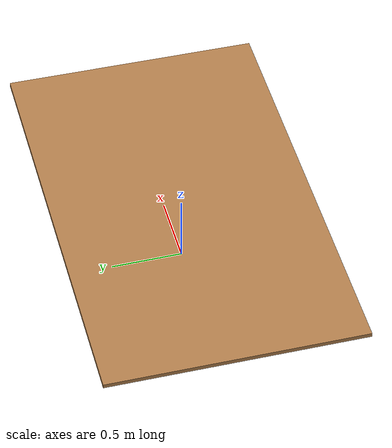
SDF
<?xml version="1.0" ?>
<sdf version="1.4">
  <model name="table_SUTURO">
    <static>true</static>
    <link name="link">
      <collision name="surface">
        <pose>0 0 0.5 0 0 0</pose>
        <geometry>
          <box>
            <size>3 1 0.03</size>
          </box>
        </geometry>
      </collision>
      <visual name="visual1">
        <pose>0 0 0.5 0 0 0</pose>
        <geometry>
          <box>
            <size>3 1.8 0.03</size>
          </box>
        </geometry>
        <material>
          <script>
            <uri>file://media/materials/scripts/gazebo.material</uri>
            <name>Gazebo/Wood</name>
          </script>
        </material>
      </visual>
      <collision name="front_left_leg">
        <pose>0.68 0.38 0 0 0 0</pose>
        <geometry>
          <cylinder>
            <radius>0.02</radius>
            <length>0.5</length>
          </cylinder>
        </geometry>
      </collision>
      <visual name="front_left_leg">
        <pose>0.68 0.38 0 0 0 0</pose>
        <geometry>
          <cylinder>
            <radius>0.02</radius>
            <length>0.5</length>
          </cylinder>
        </geometry>
        <material>
          <script>
            <uri>file://media/materials/scripts/gazebo.material</uri>
            <name>Gazebo/Grey</name>
          </script>
        </material>
      </visual>
      <collision name="front_right_leg">
        <pose>0.68 -0.38 0 0 0 0</pose>
        <geometry>
          <cylinder>
            <radius>0.02</radius>
            <length>0.5</length>
          </cylinder>
        </geometry>
      </collision>
      <visual name="front_right_leg">
        <pose>0.68 -0.38 0 0 0 0</pose>
        <geometry>
          <cylinder>
            <radius>0.02</radius>
	    <length>0.5</length>
          </cylinder>
        </geometry>
        <material>
          <script>
            <uri>file://media/materials/scripts/gazebo.material</uri>
            <name>Gazebo/Grey</name>
          </script>
        </material>
      </visual>
      <collision name="back_right_leg">
        <pose>-0.68 -0.38 0 0 0 0</pose>
        <geometry>
          <cylinder>
            <radius>0.02</radius>
            <length>0</length>
          </cylinder>
        </geometry>
      </collision>
      <visual name="back_right_leg">
        <pose>-0.68 -0.38 0 0 0 0</pose>
        <geometry>
          <cylinder>
            <radius>0.02</radius>
	    <length>0</length>
          </cylinder>
        </geometry>
        <material>
          <script>
            <uri>file://media/materials/scripts/gazebo.material</uri>
            <name>Gazebo/Grey</name>
          </script>
        </material>
      </visual>
      <collision name="back_left_leg">
        <pose>-0.68 0.38 0 0 0 0</pose>
        <geometry>
          <cylinder>
            <radius>0.02</radius>
            <length>0</length>
          </cylinder>
        </geometry>
      </collision>
      <visual name="back_left_leg">
        <pose>-0.68 0.38 0 0 0 0</pose>
        <geometry>
          <cylinder>
            <radius>0.02</radius>
            <length>0</length>
          </cylinder>
        </geometry>
        <material>
          <script>
            <uri>file://media/materials/scripts/gazebo.material</uri>
            <name>Gazebo/Grey</name>
          </script>
        </material>
      </visual>
    </link>
  </model>
</sdf>
